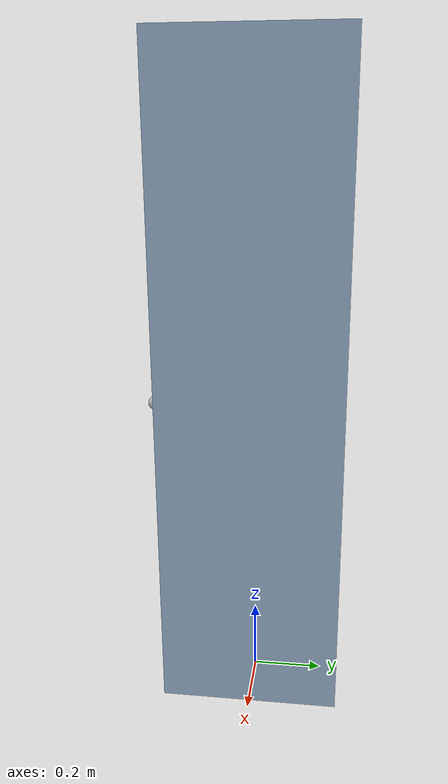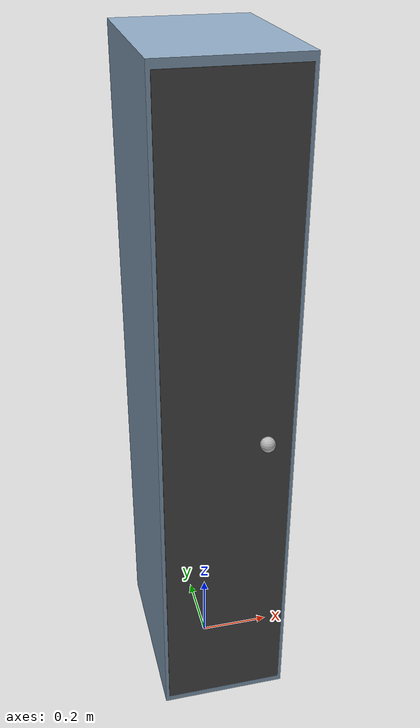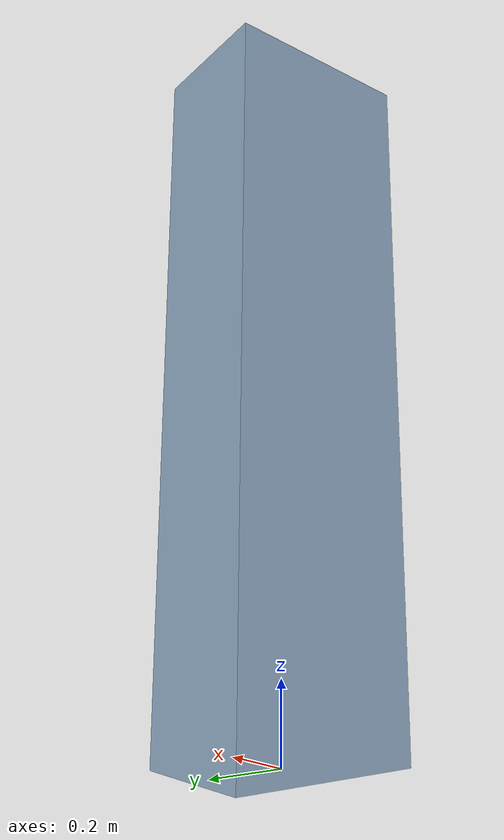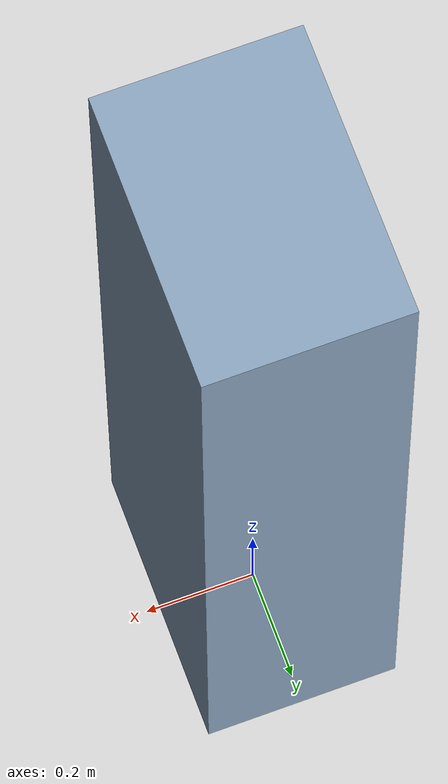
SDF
<?xml version="1.0"?>
<sdf version="1.6">
  <model name="locker">
    <static>true</static>
    <link name="body">
      <pose>0 0 0.9 0 0 0</pose>
      <collision name="c"><geometry><box><size>0.35 0.5 1.8</size></box></geometry></collision>
      <visual name="v">
        <geometry><box><size>0.35 0.5 1.8</size></box></geometry>
        <material><ambient>0.55 0.65 0.75 1</ambient><diffuse>0.55 0.65 0.75 1</diffuse></material>
      </visual>
    </link>
    <!-- Door gap line -->
    <link name="door_detail">
      <pose>0 -0.251 0.9 0 0 0</pose>
      <visual name="v">
        <geometry><box><size>0.33 0.002 1.76</size></box></geometry>
        <material><ambient>0.3 0.3 0.3 1</ambient><diffuse>0.3 0.3 0.3 1</diffuse></material>
      </visual>
    </link>
    <!-- Handle -->
    <link name="handle">
      <pose>0.1 -0.26 0.88 0 0 0</pose>
      <visual name="v"><geometry><sphere><radius>0.02</radius></sphere></geometry></visual>
    </link>
  </model>
</sdf>
